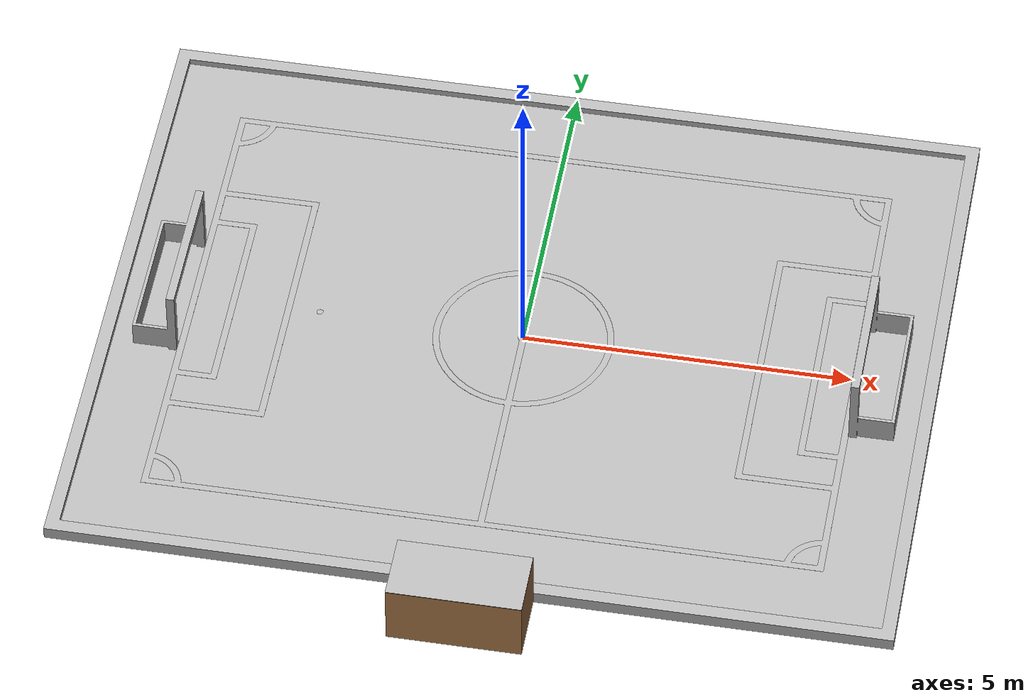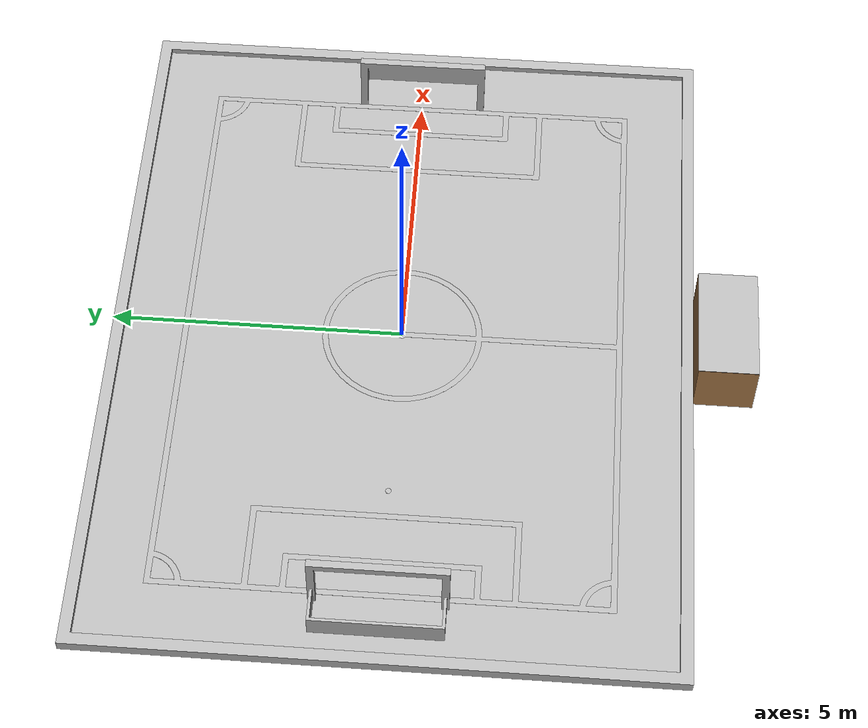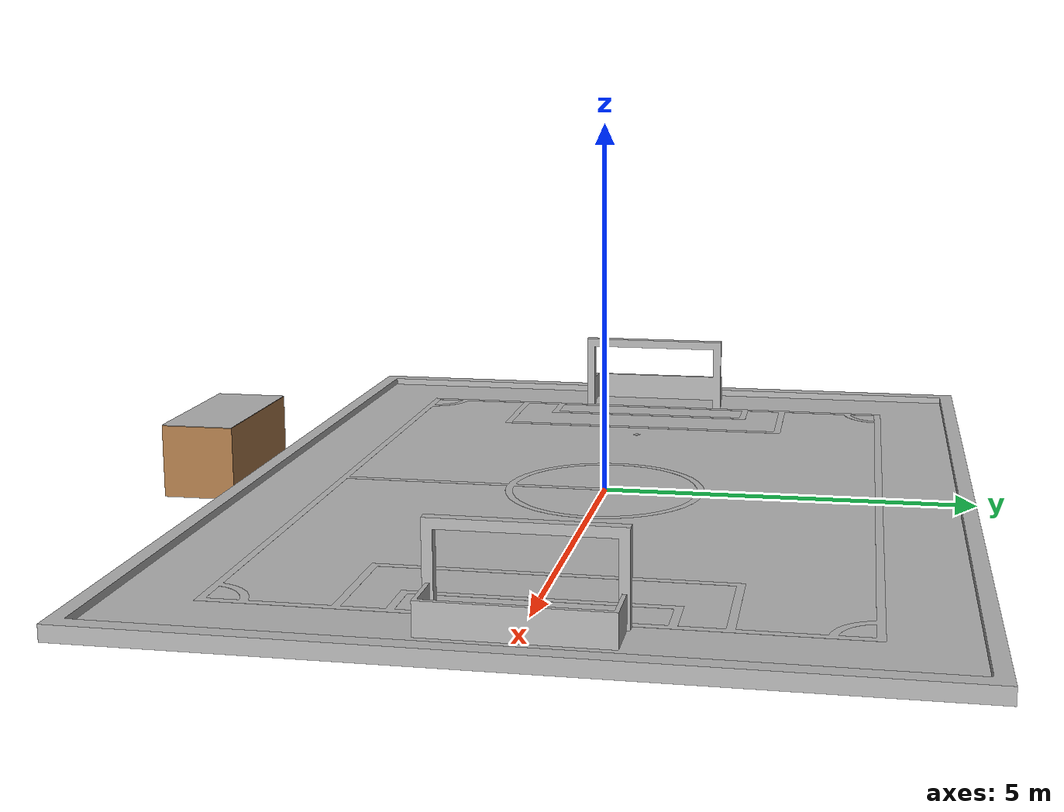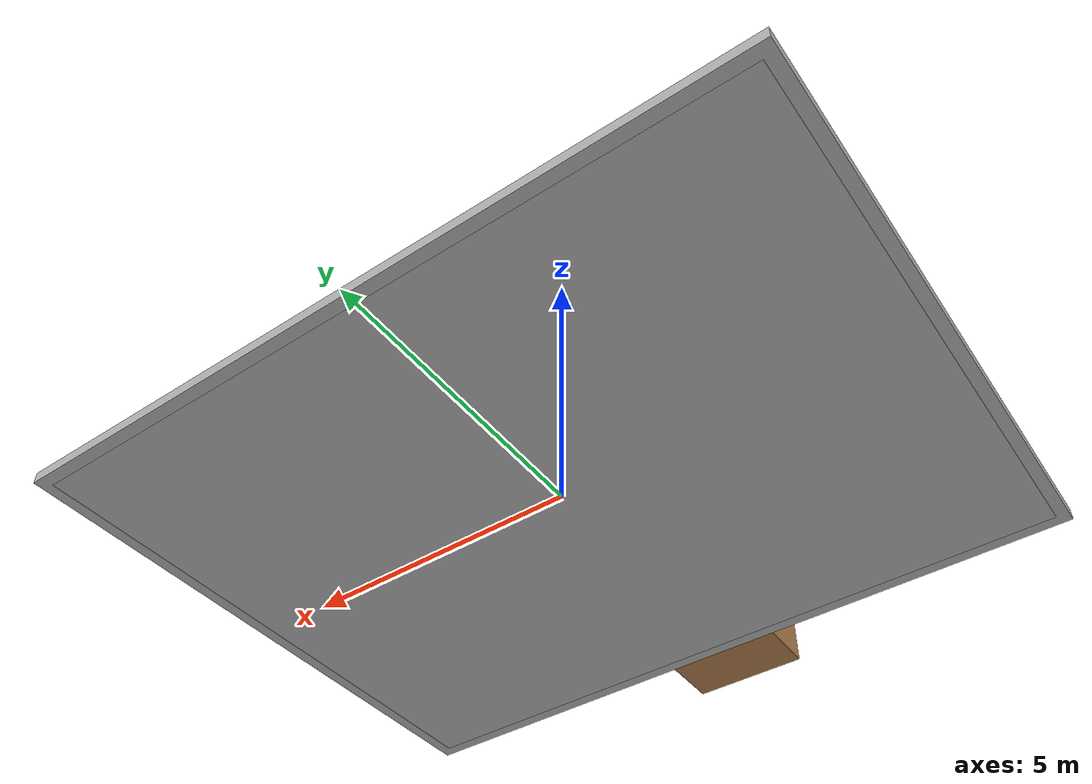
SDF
<?xml version="1.0" ?>
<sdf version="1.5">
  <model name="RoboCup MSL Field - Lar">
   <pose>-6.3 -4.97 -0.1 0 0 0</pose>
   <static>true</static>

    <link name="field">
      <collision name="field_collision">
        <geometry>
          <mesh>
             <scale>1 1 1</scale>
             <uri>model://msl_lar_field/meshes/collision.STL</uri>
          </mesh>
        </geometry>
        <surface>
            <bounce>
              <restitution_coefficient>0.8</restitution_coefficient>
              <threshold>0.01</threshold>
            </bounce>
            <friction>
              <ode>
                <mu>100</mu>
                <mu2>50</mu2>
              </ode>
            </friction>
          </surface>
      </collision>
      <collision name="base_collision">
      <pose>6.3 4.97 -0.25 0 0 0</pose>
        <geometry>
          <box>
            <size>12.6 9.94 0.5</size>
          </box>
        </geometry>
        <surface>
            <bounce>
              <restitution_coefficient>0.8</restitution_coefficient>
              <threshold>0.01</threshold>
            </bounce>
            <friction>
              <ode>
                <mu>100</mu>
                <mu2>50</mu2>
              </ode>
            </friction>
          </surface>
      </collision>
      <visual name="field_visual">
        <pose>6.3 4.97 0.05 0 0 0</pose>
        <geometry>
          <box>
            <size>12.2 9.54 0.1</size>
          </box>
        </geometry>
         <material>
          <script>
            <uri>model://msl_lar_field/materials/scripts/</uri>
            <uri>model://msl_lar_field/materials/textures/</uri>
            <name>RoboCupField/Field</name>
          </script>
        </material>
      </visual>

      <visual name="lines_visual">
        <geometry>
          <mesh>
             <scale>1 1 1</scale>
             <uri>model://msl_lar_field/meshes/lines.STL</uri>
          </mesh>
        </geometry>
         <material>
          <script>
            <uri>model://msl_lar_field/materials/scripts/</uri>
            <uri>model://msl_lar_field/materials/textures/</uri>
            <name>RoboCupField/Line</name>
          </script>
        </material>
      </visual>

      <visual name="border_visual">
        <geometry>
          <mesh>
             <scale>1 1 1</scale>
             <uri>model://msl_lar_field/meshes/border.STL</uri>
          </mesh>
        </geometry>
         <material>
          <script>
            <uri>model://msl_lar_field/materials/scripts/</uri>
            <uri>model://msl_lar_field/materials/textures/</uri>
            <name>RoboCupField/Border</name>
          </script>
        </material>
      </visual>

      <visual name="refbox_visual">
      <pose>6.3 -0.5 0.5 0 0 0</pose>
        <geometry>
          <box>
            <size>2 1 1</size>
          </box>
        </geometry>
         <material>
          <script>
            <uri>model://msl_lar_field/materials/scripts/</uri>
            <uri>model://msl_lar_field/materials/textures/</uri>
            <name>RoboCupField/Wood</name>
          </script>
        </material>
      </visual>

      <visual name="banner_visual">
      <pose>6.3 -0.5 1.005 0 0 0</pose>
        <geometry>
          <box>
            <size>2 1 0.01</size>
          </box>
        </geometry>
         <material>
          <script>
            <uri>model://msl_lar_field/materials/scripts/</uri>
            <uri>model://msl_lar_field/materials/textures/</uri>
            <name>RoboCupField/LarRefBox</name>
          </script>
        </material>
      </visual>

      <visual name="goals_visual">
      <pose>0 0 0 0 0 0</pose>
        <geometry>
          <mesh>
             <scale>1 1 1</scale>
             <uri>model://msl_lar_field/meshes/goals.STL</uri>
          </mesh>
        </geometry>
         <material>
          <script>
            <uri>model://msl_lar_field/materials/scripts/</uri>
            <uri>model://msl_lar_field/materials/textures/</uri>
            <name>RoboCupField/Goal</name>
          </script>
        </material>
      </visual>

      <!--- NETS LEFT --->

      <!--- NETS RIGHT --->
  </link>

  </model>
</sdf>
